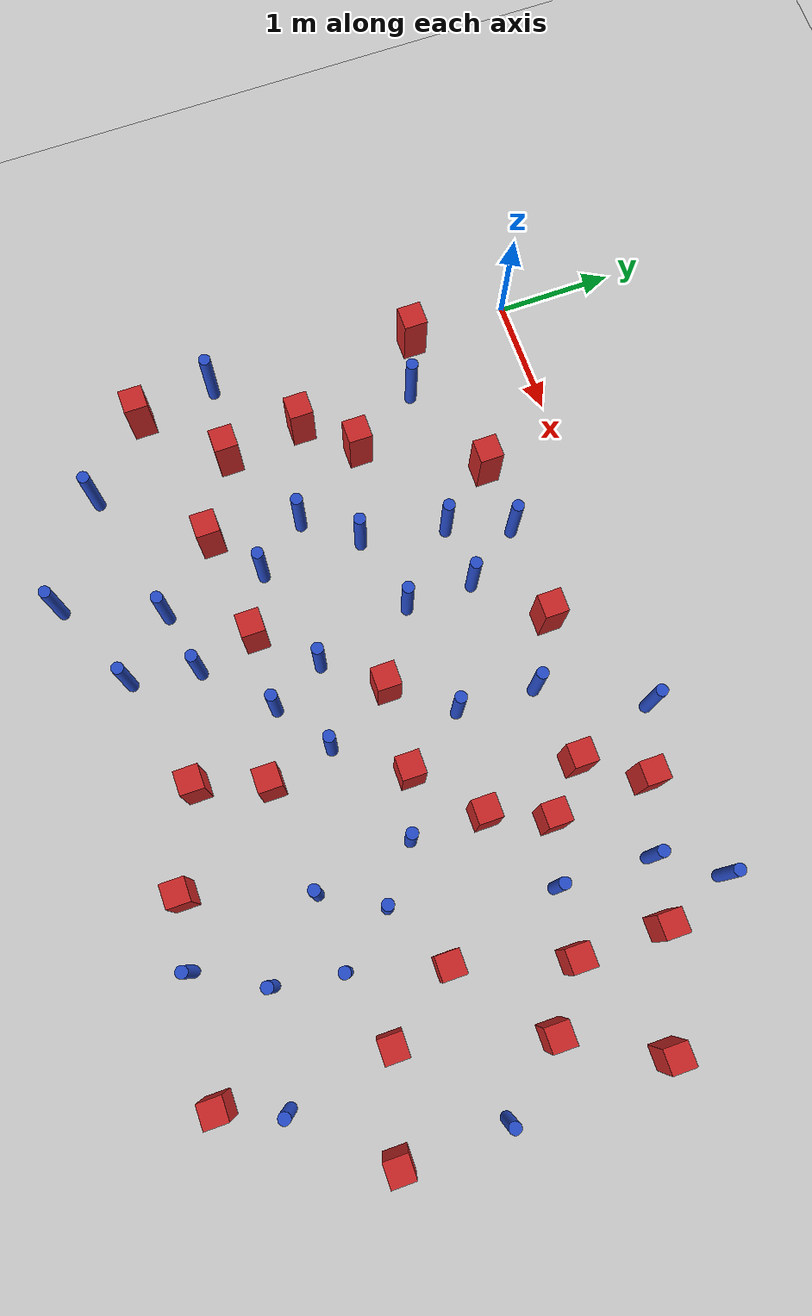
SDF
<sdf version="1.6">
 <world name="default">
  <model name="ground_plane">
   <static>1</static>
   <link name="link">
    <collision name="collision">
     <geometry><plane><normal>0 0 1</normal><size>100 100</size></plane></geometry>
     <surface><friction><ode><mu>100</mu><mu2>50</mu2></ode></friction></surface>
    </collision>
    <visual name="visual">
     <cast_shadows>0</cast_shadows>
     <geometry><plane><normal>0 0 1</normal><size>100 100</size></plane></geometry>
     <material>
      <ambient>1.0 1.0 1.0 1.0</ambient>
      <diffuse>0.8 0.8 0.8 1.0</diffuse>
      <specular>0.01 0.01 0.01 1.000000</specular>
     </material>
    </visual>
   </link>
  </model>
  <model name="square_post_obstacle5">
   <static>true</static>
   <pose>5.58213373667 -4.35693691751 8.22691968438e-08 7.2212513382e-06 -7.54495500217e-07 2.29674213826e-05</pose>
   <link name="link">
    <pose>0 0 0.25 0 -0 0</pose>
    <inertial>
     <mass>100</mass>
     <inertia>
      <ixx>0.166667</ixx>
      <ixy>0</ixy>
      <ixz>0</ixz>
      <iyy>0.166667</iyy>
      <iyz>0</iyz>
      <izz>0.166667</izz>
     </inertia>
    </inertial>
    <collision name="collision"><geometry><box><size>.2 .2 .5</size></box></geometry></collision>
    <visual name="visual">
     <geometry><box><size>.2 .2 .5</size></box></geometry>
     <material>
      <script><name>Gazebo/Red</name><uri>file://media/materials/scripts/gazebo.material</uri></script>
     </material>
    </visual>
   </link>
  </model>
  <model name="pole_obstacle13">
   <static>true</static>
   <pose>3.34858475064 -0.98336733475 2.88873142074e-08 -9.90536689217e-09 4.60219949004e-07 -1.20965994953e-07</pose>
   <link name="link">
    <pose>0 0 0.3 0 -0 0</pose>
    <inertial>
     <mass>1</mass>
     <inertia><ixx>0.145833</ixx><ixy>0</ixy><ixz>0</ixz><iyy>0.145833</iyy><iyz>0</iyz><izz>0.125</izz></inertia>
    </inertial>
    <collision name="collision">
     <geometry><cylinder><radius>0.05</radius><length>.6</length></cylinder></geometry>
    </collision>
    <visual name="visual">
     <geometry><cylinder><radius>0.05</radius><length>.6</length></cylinder></geometry>
     <material>
      <script><name>Gazebo/Blue</name><uri>file://media/materials/scripts/gazebo.material</uri></script>
     </material>
    </visual>
   </link>
  </model>
  <model name="square_post_obstacle22">
   <static>true</static>
   <pose>0.536728351592 -2.05278987813 8.22691968438e-08 7.2212513382e-06 -7.54495500217e-07 2.29674213826e-05</pose>
   <link name="link">
    <pose>0 0 0.25 0 -0 0</pose>
    <inertial>
     <mass>100</mass>
     <inertia>
      <ixx>0.166667</ixx>
      <ixy>0</ixy>
      <ixz>0</ixz>
      <iyy>0.166667</iyy>
      <iyz>0</iyz>
      <izz>0.166667</izz>
     </inertia>
    </inertial>
    <collision name="collision"><geometry><box><size>.2 .2 .5</size></box></geometry></collision>
    <visual name="visual">
     <geometry><box><size>.2 .2 .5</size></box></geometry>
     <material>
      <script><name>Gazebo/Red</name><uri>file://media/materials/scripts/gazebo.material</uri></script>
     </material>
    </visual>
   </link>
  </model>
  <model name="pole_obstacle17">
   <static>true</static>
   <pose>-0.0558707264338 -2.66336785733 2.88873142074e-08 -9.90536692535e-09 4.60219948925e-07 -1.2096599499e-07</pose>
   <link name="link">
    <pose>0 0 0.3 0 -0 0</pose>
    <inertial>
     <mass>1</mass>
     <inertia><ixx>0.145833</ixx><ixy>0</ixy><ixz>0</ixz><iyy>0.145833</iyy><iyz>0</iyz><izz>0.125</izz></inertia>
    </inertial>
    <collision name="collision">
     <geometry><cylinder><radius>0.05</radius><length>.6</length></cylinder></geometry>
    </collision>
    <visual name="visual">
     <geometry><cylinder><radius>0.05</radius><length>.6</length></cylinder></geometry>
     <material>
      <script><name>Gazebo/Blue</name><uri>file://media/materials/scripts/gazebo.material</uri></script>
     </material>
    </visual>
   </link>
  </model>
  <model name="pole_obstacle18">
   <static>true</static>
   <pose>5.77748012901 -3.87090259575 2.88873142074e-08 -9.90536690245e-09 4.6021994898e-07 -1.20965994966e-07</pose>
   <link name="link">
    <pose>0 0 0.3 0 -0 0</pose>
    <inertial>
     <mass>1</mass>
     <inertia><ixx>0.145833</ixx><ixy>0</ixy><ixz>0</ixz><iyy>0.145833</iyy><iyz>0</iyz><izz>0.125</izz></inertia>
    </inertial>
    <collision name="collision">
     <geometry><cylinder><radius>0.05</radius><length>.6</length></cylinder></geometry>
    </collision>
    <visual name="visual">
     <geometry><cylinder><radius>0.05</radius><length>.6</length></cylinder></geometry>
     <material>
      <script><name>Gazebo/Blue</name><uri>file://media/materials/scripts/gazebo.material</uri></script>
     </material>
    </visual>
   </link>
  </model>
  <model name="square_post_obstacle28">
   <static>true</static>
   <pose>2.18755131449 -2.99619584192 8.22691968438e-08 7.2212513382e-06 -7.54495500217e-07 2.29674213826e-05</pose>
   <link name="link">
    <pose>0 0 0.25 0 -0 0</pose>
    <inertial>
     <mass>100</mass>
     <inertia>
      <ixx>0.166667</ixx>
      <ixy>0</ixy>
      <ixz>0</ixz>
      <iyy>0.166667</iyy>
      <iyz>0</iyz>
      <izz>0.166667</izz>
     </inertia>
    </inertial>
    <collision name="collision"><geometry><box><size>.2 .2 .5</size></box></geometry></collision>
    <visual name="visual">
     <geometry><box><size>.2 .2 .5</size></box></geometry>
     <material>
      <script><name>Gazebo/Red</name><uri>file://media/materials/scripts/gazebo.material</uri></script>
     </material>
    </visual>
   </link>
  </model>
  <model name="square_post_obstacle41">
   <static>true</static>
   <pose>4.00640396796 -4.16289509332 8.22691968438e-08 7.2212513382e-06 -7.54495500217e-07 2.29674213826e-05</pose>
   <link name="link">
    <pose>0 0 0.25 0 -0 0</pose>
    <inertial>
     <mass>100</mass>
     <inertia>
      <ixx>0.166667</ixx>
      <ixy>0</ixy>
      <ixz>0</ixz>
      <iyy>0.166667</iyy>
      <iyz>0</iyz>
      <izz>0.166667</izz>
     </inertia>
    </inertial>
    <collision name="collision"><geometry><box><size>.2 .2 .5</size></box></geometry></collision>
    <visual name="visual">
     <geometry><box><size>.2 .2 .5</size></box></geometry>
     <material>
      <script><name>Gazebo/Red</name><uri>file://media/materials/scripts/gazebo.material</uri></script>
     </material>
    </visual>
   </link>
  </model>
  <model name="square_post_obstacle47">
   <static>true</static>
   <pose>3.22486725443 -3.81698603982 8.22691968438e-08 7.2212513382e-06 -7.54495500217e-07 2.29674213826e-05</pose>
   <link name="link">
    <pose>0 0 0.25 0 -0 0</pose>
    <inertial>
     <mass>100</mass>
     <inertia>
      <ixx>0.166667</ixx>
      <ixy>0</ixy>
      <ixz>0</ixz>
      <iyy>0.166667</iyy>
      <iyz>0</iyz>
      <izz>0.166667</izz>
     </inertia>
    </inertial>
    <collision name="collision"><geometry><box><size>.2 .2 .5</size></box></geometry></collision>
    <visual name="visual">
     <geometry><box><size>.2 .2 .5</size></box></geometry>
     <material>
      <script><name>Gazebo/Red</name><uri>file://media/materials/scripts/gazebo.material</uri></script>
     </material>
    </visual>
   </link>
  </model>
  <model name="pole_obstacle49">
   <static>true</static>
   <pose>1.36091345685 -2.3298193036 2.88873142074e-08 -9.90536689791e-09 4.6021994899e-07 -1.20965994959e-07</pose>
   <link name="link">
    <pose>0 0 0.3 0 -0 0</pose>
    <inertial>
     <mass>1</mass>
     <inertia><ixx>0.145833</ixx><ixy>0</ixy><ixz>0</ixz><iyy>0.145833</iyy><iyz>0</iyz><izz>0.125</izz></inertia>
    </inertial>
    <collision name="collision">
     <geometry><cylinder><radius>0.05</radius><length>.6</length></cylinder></geometry>
    </collision>
    <visual name="visual">
     <geometry><cylinder><radius>0.05</radius><length>.6</length></cylinder></geometry>
     <material>
      <script><name>Gazebo/Blue</name><uri>file://media/materials/scripts/gazebo.material</uri></script>
     </material>
    </visual>
   </link>
  </model>
  <model name="square_post_obstacle64">
   <static>true</static>
   <pose>0.898522155047 -1.66061465784 8.22691968438e-08 7.2212513382e-06 -7.54495500217e-07 2.29674213826e-05</pose>
   <link name="link">
    <pose>0 0 0.25 0 -0 0</pose>
    <inertial>
     <mass>100</mass>
     <inertia>
      <ixx>0.166667</ixx>
      <ixy>0</ixy>
      <ixz>0</ixz>
      <iyy>0.166667</iyy>
      <iyz>0</iyz>
      <izz>0.166667</izz>
     </inertia>
    </inertial>
    <collision name="collision"><geometry><box><size>.2 .2 .5</size></box></geometry></collision>
    <visual name="visual">
     <geometry><box><size>.2 .2 .5</size></box></geometry>
     <material>
      <script><name>Gazebo/Red</name><uri>file://media/materials/scripts/gazebo.material</uri></script>
     </material>
    </visual>
   </link>
  </model>
  <model name="pole_obstacle65">
   <static>true</static>
   <pose>0.618319979026 -3.89236733401 2.88873142074e-08 -9.90536689636e-09 4.60219948994e-07 -1.20965994958e-07</pose>
   <link name="link">
    <pose>0 0 0.3 0 -0 0</pose>
    <inertial>
     <mass>1</mass>
     <inertia><ixx>0.145833</ixx><ixy>0</ixy><ixz>0</ixz><iyy>0.145833</iyy><iyz>0</iyz><izz>0.125</izz></inertia>
    </inertial>
    <collision name="collision">
     <geometry><cylinder><radius>0.05</radius><length>.6</length></cylinder></geometry>
    </collision>
    <visual name="visual">
     <geometry><cylinder><radius>0.05</radius><length>.6</length></cylinder></geometry>
     <material>
      <script><name>Gazebo/Blue</name><uri>file://media/materials/scripts/gazebo.material</uri></script>
     </material>
    </visual>
   </link>
  </model>
  <model name="pole_obstacle71">
   <static>true</static>
   <pose>3.7781219068 -0.166580265086 2.88873142074e-08 -9.90536689156e-09 4.60219949005e-07 -1.20965994951e-07</pose>
   <link name="link">
    <pose>0 0 0.3 0 -0 0</pose>
    <inertial>
     <mass>1</mass>
     <inertia><ixx>0.145833</ixx><ixy>0</ixy><ixz>0</ixz><iyy>0.145833</iyy><iyz>0</iyz><izz>0.125</izz></inertia>
    </inertial>
    <collision name="collision">
     <geometry><cylinder><radius>0.05</radius><length>.6</length></cylinder></geometry>
    </collision>
    <visual name="visual">
     <geometry><cylinder><radius>0.05</radius><length>.6</length></cylinder></geometry>
     <material>
      <script><name>Gazebo/Blue</name><uri>file://media/materials/scripts/gazebo.material</uri></script>
     </material>
    </visual>
   </link>
  </model>
  <model name="pole_obstacle74">
   <static>true</static>
   <pose>2.33920346586 -1.15568974703 2.88873142074e-08 -9.90536689395e-09 4.60219949e-07 -1.20965994953e-07</pose>
   <link name="link">
    <pose>0 0 0.3 0 -0 0</pose>
    <inertial>
     <mass>1</mass>
     <inertia><ixx>0.145833</ixx><ixy>0</ixy><ixz>0</ixz><iyy>0.145833</iyy><iyz>0</iyz><izz>0.125</izz></inertia>
    </inertial>
    <collision name="collision">
     <geometry><cylinder><radius>0.05</radius><length>.6</length></cylinder></geometry>
    </collision>
    <visual name="visual">
     <geometry><cylinder><radius>0.05</radius><length>.6</length></cylinder></geometry>
     <material>
      <script><name>Gazebo/Blue</name><uri>file://media/materials/scripts/gazebo.material</uri></script>
     </material>
    </visual>
   </link>
  </model>
  <model name="pole_obstacle78">
   <static>true</static>
   <pose>5.23319291656 -0.143627655272 2.88873142074e-08 -9.90536689223e-09 4.60219949004e-07 -1.20965994952e-07</pose>
   <link name="link">
    <pose>0 0 0.3 0 -0 0</pose>
    <inertial>
     <mass>1</mass>
     <inertia><ixx>0.145833</ixx><ixy>0</ixy><ixz>0</ixz><iyy>0.145833</iyy><iyz>0</iyz><izz>0.125</izz></inertia>
    </inertial>
    <collision name="collision">
     <geometry><cylinder><radius>0.05</radius><length>.6</length></cylinder></geometry>
    </collision>
    <visual name="visual">
     <geometry><cylinder><radius>0.05</radius><length>.6</length></cylinder></geometry>
     <material>
      <script><name>Gazebo/Blue</name><uri>file://media/materials/scripts/gazebo.material</uri></script>
     </material>
    </visual>
   </link>
  </model>
  <model name="square_post_obstacle79">
   <static>true</static>
   <pose>4.32806775505 -0.422884418551 8.22691968438e-08 7.2212513382e-06 -7.54495500217e-07 2.29674213826e-05</pose>
   <link name="link">
    <pose>0 0 0.25 0 -0 0</pose>
    <inertial>
     <mass>100</mass>
     <inertia>
      <ixx>0.166667</ixx>
      <ixy>0</ixy>
      <ixz>0</ixz>
      <iyy>0.166667</iyy>
      <iyz>0</iyz>
      <izz>0.166667</izz>
     </inertia>
    </inertial>
    <collision name="collision"><geometry><box><size>.2 .2 .5</size></box></geometry></collision>
    <visual name="visual">
     <geometry><box><size>.2 .2 .5</size></box></geometry>
     <material>
      <script><name>Gazebo/Red</name><uri>file://media/materials/scripts/gazebo.material</uri></script>
     </material>
    </visual>
   </link>
  </model>
  <model name="pole_obstacle97">
   <static>true</static>
   <pose>1.45192159625 -4.43916252776 2.88873142074e-08 -9.90536689852e-09 4.60219948989e-07 -1.2096599496e-07</pose>
   <link name="link">
    <pose>0 0 0.3 0 -0 0</pose>
    <inertial>
     <mass>1</mass>
     <inertia><ixx>0.145833</ixx><ixy>0</ixy><ixz>0</ixz><iyy>0.145833</iyy><iyz>0</iyz><izz>0.125</izz></inertia>
    </inertial>
    <collision name="collision">
     <geometry><cylinder><radius>0.05</radius><length>.6</length></cylinder></geometry>
    </collision>
    <visual name="visual">
     <geometry><cylinder><radius>0.05</radius><length>.6</length></cylinder></geometry>
     <material>
      <script><name>Gazebo/Blue</name><uri>file://media/materials/scripts/gazebo.material</uri></script>
     </material>
    </visual>
   </link>
  </model>
  <model name="pole_obstacle99">
   <static>true</static>
   <pose>1.80909178135 -1.19204967231 2.88873142074e-08 -9.90536689672e-09 4.60219948993e-07 -1.20965994959e-07</pose>
   <link name="link">
    <pose>0 0 0.3 0 -0 0</pose>
    <inertial>
     <mass>1</mass>
     <inertia><ixx>0.145833</ixx><ixy>0</ixy><ixz>0</ixz><iyy>0.145833</iyy><iyz>0</iyz><izz>0.125</izz></inertia>
    </inertial>
    <collision name="collision">
     <geometry><cylinder><radius>0.05</radius><length>.6</length></cylinder></geometry>
    </collision>
    <visual name="visual">
     <geometry><cylinder><radius>0.05</radius><length>.6</length></cylinder></geometry>
     <material>
      <script><name>Gazebo/Blue</name><uri>file://media/materials/scripts/gazebo.material</uri></script>
     </material>
    </visual>
   </link>
  </model>
  <model name="pole_obstacle100">
   <static>true</static>
   <pose>1.99716783515 -0.671688568658 2.88873142074e-08 -9.9053669082e-09 4.60219948966e-07 -1.20965994976e-07</pose>
   <link name="link">
    <pose>0 0 0.3 0 -0 0</pose>
    <inertial>
     <mass>1</mass>
     <inertia><ixx>0.145833</ixx><ixy>0</ixy><ixz>0</ixz><iyy>0.145833</iyy><iyz>0</iyz><izz>0.125</izz></inertia>
    </inertial>
    <collision name="collision">
     <geometry><cylinder><radius>0.05</radius><length>.6</length></cylinder></geometry>
    </collision>
    <visual name="visual">
     <geometry><cylinder><radius>0.05</radius><length>.6</length></cylinder></geometry>
     <material>
      <script><name>Gazebo/Blue</name><uri>file://media/materials/scripts/gazebo.material</uri></script>
     </material>
    </visual>
   </link>
  </model>
  <model name="square_post_obstacle94">
   <static>true</static>
   <pose>0.612486489703 -2.72702127874 8.22691968438e-08 7.2212513382e-06 -7.54495500217e-07 2.29674213826e-05</pose>
   <link name="link">
    <pose>0 0 0.25 0 -0 0</pose>
    <inertial>
     <mass>100</mass>
     <inertia>
      <ixx>0.166667</ixx>
      <ixy>0</ixy>
      <ixz>0</ixz>
      <iyy>0.166667</iyy>
      <iyz>0</iyz>
      <izz>0.166667</izz>
     </inertia>
    </inertial>
    <collision name="collision"><geometry><box><size>.2 .2 .5</size></box></geometry></collision>
    <visual name="visual">
     <geometry><box><size>.2 .2 .5</size></box></geometry>
     <material>
      <script><name>Gazebo/Red</name><uri>file://media/materials/scripts/gazebo.material</uri></script>
     </material>
    </visual>
   </link>
  </model>
  <model name="pole_obstacle107">
   <static>true</static>
   <pose>4.18005461206 -2.34685959148 2.88873142074e-08 -9.90536690245e-09 4.6021994898e-07 -1.20965994966e-07</pose>
   <link name="link">
    <pose>0 0 0.3 0 -0 0</pose>
    <inertial>
     <mass>1</mass>
     <inertia><ixx>0.145833</ixx><ixy>0</ixy><ixz>0</ixz><iyy>0.145833</iyy><iyz>0</iyz><izz>0.125</izz></inertia>
    </inertial>
    <collision name="collision">
     <geometry><cylinder><radius>0.05</radius><length>.6</length></cylinder></geometry>
    </collision>
    <visual name="visual">
     <geometry><cylinder><radius>0.05</radius><length>.6</length></cylinder></geometry>
     <material>
      <script><name>Gazebo/Blue</name><uri>file://media/materials/scripts/gazebo.material</uri></script>
     </material>
    </visual>
   </link>
  </model>
  <model name="square_post_obstacle98">
   <static>true</static>
   <pose>1.27426273541 -3.08795597381 8.22691968438e-08 7.2212513382e-06 -7.54495500217e-07 2.29674213826e-05</pose>
   <link name="link">
    <pose>0 0 0.25 0 -0 0</pose>
    <inertial>
     <mass>100</mass>
     <inertia>
      <ixx>0.166667</ixx>
      <ixy>0</ixy>
      <ixz>0</ixz>
      <iyy>0.166667</iyy>
      <iyz>0</iyz>
      <izz>0.166667</izz>
     </inertia>
    </inertial>
    <collision name="collision"><geometry><box><size>.2 .2 .5</size></box></geometry></collision>
    <visual name="visual">
     <geometry><box><size>.2 .2 .5</size></box></geometry>
     <material>
      <script><name>Gazebo/Red</name><uri>file://media/materials/scripts/gazebo.material</uri></script>
     </material>
    </visual>
   </link>
  </model>
  <model name="pole_obstacle114">
   <static>true</static>
   <pose>4.33791004147 -3.17164808258 2.88873142074e-08 -9.90536690245e-09 4.6021994898e-07 -1.20965994966e-07</pose>
   <link name="link">
    <pose>0 0 0.3 0 -0 0</pose>
    <inertial>
     <mass>1</mass>
     <inertia><ixx>0.145833</ixx><ixy>0</ixy><ixz>0</ixz><iyy>0.145833</iyy><iyz>0</iyz><izz>0.125</izz></inertia>
    </inertial>
    <collision name="collision">
     <geometry><cylinder><radius>0.05</radius><length>.6</length></cylinder></geometry>
    </collision>
    <visual name="visual">
     <geometry><cylinder><radius>0.05</radius><length>.6</length></cylinder></geometry>
     <material>
      <script><name>Gazebo/Blue</name><uri>file://media/materials/scripts/gazebo.material</uri></script>
     </material>
    </visual>
   </link>
  </model>
  <model name="square_post_obstacle107">
   <static>true</static>
   <pose>5.43947340817 -0.730253624824 8.22691968438e-08 7.2212513382e-06 -7.54495500217e-07 2.29674213826e-05</pose>
   <link name="link">
    <pose>0 0 0.25 0 -0 0</pose>
    <inertial>
     <mass>100</mass>
     <inertia>
      <ixx>0.166667</ixx>
      <ixy>0</ixy>
      <ixz>0</ixz>
      <iyy>0.166667</iyy>
      <iyz>0</iyz>
      <izz>0.166667</izz>
     </inertia>
    </inertial>
    <collision name="collision"><geometry><box><size>.2 .2 .5</size></box></geometry></collision>
    <visual name="visual">
     <geometry><box><size>.2 .2 .5</size></box></geometry>
     <material>
      <script><name>Gazebo/Red</name><uri>file://media/materials/scripts/gazebo.material</uri></script>
     </material>
    </visual>
   </link>
  </model>
  <model name="square_post_obstacle108">
   <static>true</static>
   <pose>0.0331823796185 -3.32757799314 8.22691968438e-08 7.2212513382e-06 -7.54495500217e-07 2.29674213826e-05</pose>
   <link name="link">
    <pose>0 0 0.25 0 -0 0</pose>
    <inertial>
     <mass>100</mass>
     <inertia>
      <ixx>0.166667</ixx>
      <ixy>0</ixy>
      <ixz>0</ixz>
      <iyy>0.166667</iyy>
      <iyz>0</iyz>
      <izz>0.166667</izz>
     </inertia>
    </inertial>
    <collision name="collision"><geometry><box><size>.2 .2 .5</size></box></geometry></collision>
    <visual name="visual">
     <geometry><box><size>.2 .2 .5</size></box></geometry>
     <material>
      <script><name>Gazebo/Red</name><uri>file://media/materials/scripts/gazebo.material</uri></script>
     </material>
    </visual>
   </link>
  </model>
  <model name="square_post_obstacle110">
   <static>true</static>
   <pose>6.33395806071 -1.05585323986 8.22691968438e-08 7.2212513382e-06 -7.54495500217e-07 2.29674213826e-05</pose>
   <link name="link">
    <pose>0 0 0.25 0 -0 0</pose>
    <inertial>
     <mass>100</mass>
     <inertia>
      <ixx>0.166667</ixx>
      <ixy>0</ixy>
      <ixz>0</ixz>
      <iyy>0.166667</iyy>
      <iyz>0</iyz>
      <izz>0.166667</izz>
     </inertia>
    </inertial>
    <collision name="collision"><geometry><box><size>.2 .2 .5</size></box></geometry></collision>
    <visual name="visual">
     <geometry><box><size>.2 .2 .5</size></box></geometry>
     <material>
      <script><name>Gazebo/Red</name><uri>file://media/materials/scripts/gazebo.material</uri></script>
     </material>
    </visual>
   </link>
  </model>
  <model name="pole_obstacle128">
   <static>true</static>
   <pose>2.58996879089 -2.56338594891 2.88873142074e-08 -9.90536690232e-09 4.6021994898e-07 -1.20965994968e-07</pose>
   <link name="link">
    <pose>0 0 0.3 0 -0 0</pose>
    <inertial>
     <mass>1</mass>
     <inertia><ixx>0.145833</ixx><ixy>0</ixy><ixz>0</ixz><iyy>0.145833</iyy><iyz>0</iyz><izz>0.125</izz></inertia>
    </inertial>
    <collision name="collision">
     <geometry><cylinder><radius>0.05</radius><length>.6</length></cylinder></geometry>
    </collision>
    <visual name="visual">
     <geometry><cylinder><radius>0.05</radius><length>.6</length></cylinder></geometry>
     <material>
      <script><name>Gazebo/Blue</name><uri>file://media/materials/scripts/gazebo.material</uri></script>
     </material>
    </visual>
   </link>
  </model>
  <model name="square_post_obstacle114">
   <static>true</static>
   <pose>3.40581087794 -3.24769245447 8.22691968438e-08 7.2212513382e-06 -7.54495500217e-07 2.29674213826e-05</pose>
   <link name="link">
    <pose>0 0 0.25 0 -0 0</pose>
    <inertial>
     <mass>100</mass>
     <inertia>
      <ixx>0.166667</ixx>
      <ixy>0</ixy>
      <ixz>0</ixz>
      <iyy>0.166667</iyy>
      <iyz>0</iyz>
      <izz>0.166667</izz>
     </inertia>
    </inertial>
    <collision name="collision"><geometry><box><size>.2 .2 .5</size></box></geometry></collision>
    <visual name="visual">
     <geometry><box><size>.2 .2 .5</size></box></geometry>
     <material>
      <script><name>Gazebo/Red</name><uri>file://media/materials/scripts/gazebo.material</uri></script>
     </material>
    </visual>
   </link>
  </model>
  <model name="pole_obstacle130">
   <static>true</static>
   <pose>2.32533840753 -3.50514452851 2.88873142074e-08 -9.90536690232e-09 4.6021994898e-07 -1.20965994968e-07</pose>
   <link name="link">
    <pose>0 0 0.3 0 -0 0</pose>
    <inertial>
     <mass>1</mass>
     <inertia><ixx>0.145833</ixx><ixy>0</ixy><ixz>0</ixz><iyy>0.145833</iyy><iyz>0</iyz><izz>0.125</izz></inertia>
    </inertial>
    <collision name="collision">
     <geometry><cylinder><radius>0.05</radius><length>.6</length></cylinder></geometry>
    </collision>
    <visual name="visual">
     <geometry><cylinder><radius>0.05</radius><length>.6</length></cylinder></geometry>
     <material>
      <script><name>Gazebo/Blue</name><uri>file://media/materials/scripts/gazebo.material</uri></script>
     </material>
    </visual>
   </link>
  </model>
  <model name="pole_obstacle133">
   <static>true</static>
   <pose>1.78246439067 -3.62213198996 2.88873142074e-08 -9.90536689791e-09 4.6021994899e-07 -1.20965994959e-07</pose>
   <link name="link">
    <pose>0 0 0.3 0 -0 0</pose>
    <inertial>
     <mass>1</mass>
     <inertia><ixx>0.145833</ixx><ixy>0</ixy><ixz>0</ixz><iyy>0.145833</iyy><iyz>0</iyz><izz>0.125</izz></inertia>
    </inertial>
    <collision name="collision">
     <geometry><cylinder><radius>0.05</radius><length>.6</length></cylinder></geometry>
    </collision>
    <visual name="visual">
     <geometry><cylinder><radius>0.05</radius><length>.6</length></cylinder></geometry>
     <material>
      <script><name>Gazebo/Blue</name><uri>file://media/materials/scripts/gazebo.material</uri></script>
     </material>
    </visual>
   </link>
  </model>
  <model name="pole_obstacle134">
   <static>true</static>
   <pose>0.545768224701 -1.05775818409 2.88873142074e-08 -9.90536690151e-09 4.60219948982e-07 -1.20965994965e-07</pose>
   <link name="link">
    <pose>0 0 0.3 0 -0 0</pose>
    <inertial>
     <mass>1</mass>
     <inertia><ixx>0.145833</ixx><ixy>0</ixy><ixz>0</ixz><iyy>0.145833</iyy><iyz>0</iyz><izz>0.125</izz></inertia>
    </inertial>
    <collision name="collision">
     <geometry><cylinder><radius>0.05</radius><length>.6</length></cylinder></geometry>
    </collision>
    <visual name="visual">
     <geometry><cylinder><radius>0.05</radius><length>.6</length></cylinder></geometry>
     <material>
      <script><name>Gazebo/Blue</name><uri>file://media/materials/scripts/gazebo.material</uri></script>
     </material>
    </visual>
   </link>
  </model>
  <model name="square_post_obstacle117">
   <static>true</static>
   <pose>3.67541048281 -2.17709908329 8.22691968438e-08 7.2212513382e-06 -7.54495500217e-07 2.29674213826e-05</pose>
   <link name="link">
    <pose>0 0 0.25 0 -0 0</pose>
    <inertial>
     <mass>100</mass>
     <inertia>
      <ixx>0.166667</ixx>
      <ixy>0</ixy>
      <ixz>0</ixz>
      <iyy>0.166667</iyy>
      <iyz>0</iyz>
      <izz>0.166667</izz>
     </inertia>
    </inertial>
    <collision name="collision"><geometry><box><size>.2 .2 .5</size></box></geometry></collision>
    <visual name="visual">
     <geometry><box><size>.2 .2 .5</size></box></geometry>
     <material>
      <script><name>Gazebo/Red</name><uri>file://media/materials/scripts/gazebo.material</uri></script>
     </material>
    </visual>
   </link>
  </model>
  <model name="square_post_obstacle120">
   <static>true</static>
   <pose>5.44401736198 -1.46878365963 8.22691968438e-08 7.2212513382e-06 -7.54495500217e-07 2.29674213826e-05</pose>
   <link name="link">
    <pose>0 0 0.25 0 -0 0</pose>
    <inertial>
     <mass>100</mass>
     <inertia>
      <ixx>0.166667</ixx>
      <ixy>0</ixy>
      <ixz>0</ixz>
      <iyy>0.166667</iyy>
      <iyz>0</iyz>
      <izz>0.166667</izz>
     </inertia>
    </inertial>
    <collision name="collision"><geometry><box><size>.2 .2 .5</size></box></geometry></collision>
    <visual name="visual">
     <geometry><box><size>.2 .2 .5</size></box></geometry>
     <material>
      <script><name>Gazebo/Red</name><uri>file://media/materials/scripts/gazebo.material</uri></script>
     </material>
    </visual>
   </link>
  </model>
  <model name="square_post_obstacle122">
   <static>true</static>
   <pose>5.17714442704 -2.39494758645 8.22691968438e-08 7.2212513382e-06 -7.54495500217e-07 2.29674213826e-05</pose>
   <link name="link">
    <pose>0 0 0.25 0 -0 0</pose>
    <inertial>
     <mass>100</mass>
     <inertia>
      <ixx>0.166667</ixx>
      <ixy>0</ixy>
      <ixz>0</ixz>
      <iyy>0.166667</iyy>
      <iyz>0</iyz>
      <izz>0.166667</izz>
     </inertia>
    </inertial>
    <collision name="collision"><geometry><box><size>.2 .2 .5</size></box></geometry></collision>
    <visual name="visual">
     <geometry><box><size>.2 .2 .5</size></box></geometry>
     <material>
      <script><name>Gazebo/Red</name><uri>file://media/materials/scripts/gazebo.material</uri></script>
     </material>
    </visual>
   </link>
  </model>
  <model name="pole_obstacle140">
   <static>true</static>
   <pose>4.88495058194 -3.7119805526 2.88873142074e-08 -9.90536690245e-09 4.6021994898e-07 -1.20965994966e-07</pose>
   <link name="link">
    <pose>0 0 0.3 0 -0 0</pose>
    <inertial>
     <mass>1</mass>
     <inertia><ixx>0.145833</ixx><ixy>0</ixy><ixz>0</ixz><iyy>0.145833</iyy><iyz>0</iyz><izz>0.125</izz></inertia>
    </inertial>
    <collision name="collision">
     <geometry><cylinder><radius>0.05</radius><length>.6</length></cylinder></geometry>
    </collision>
    <visual name="visual">
     <geometry><cylinder><radius>0.05</radius><length>.6</length></cylinder></geometry>
     <material>
      <script><name>Gazebo/Blue</name><uri>file://media/materials/scripts/gazebo.material</uri></script>
     </material>
    </visual>
   </link>
  </model>
  <model name="pole_obstacle143">
   <static>true</static>
   <pose>2.35372381542 -1.73083985646 2.88873142074e-08 -9.90536689395e-09 4.60219949e-07 -1.20965994953e-07</pose>
   <link name="link">
    <pose>0 0 0.3 0 -0 0</pose>
    <inertial>
     <mass>1</mass>
     <inertia><ixx>0.145833</ixx><ixy>0</ixy><ixz>0</ixz><iyy>0.145833</iyy><iyz>0</iyz><izz>0.125</izz></inertia>
    </inertial>
    <collision name="collision">
     <geometry><cylinder><radius>0.05</radius><length>.6</length></cylinder></geometry>
    </collision>
    <visual name="visual">
     <geometry><cylinder><radius>0.05</radius><length>.6</length></cylinder></geometry>
     <material>
      <script><name>Gazebo/Blue</name><uri>file://media/materials/scripts/gazebo.material</uri></script>
     </material>
    </visual>
   </link>
  </model>
  <model name="square_post_obstacle141">
   <static>true</static>
   <pose>2.82411820756 -0.677958998327 8.22691968438e-08 7.2212513382e-06 -7.54495500217e-07 2.29674213826e-05</pose>
   <link name="link">
    <pose>0 0 0.25 0 -0 0</pose>
    <inertial>
     <mass>100</mass>
     <inertia>
      <ixx>0.166667</ixx>
      <ixy>0</ixy>
      <ixz>0</ixz>
      <iyy>0.166667</iyy>
      <iyz>0</iyz>
      <izz>0.166667</izz>
     </inertia>
    </inertial>
    <collision name="collision"><geometry><box><size>.2 .2 .5</size></box></geometry></collision>
    <visual name="visual">
     <geometry><box><size>.2 .2 .5</size></box></geometry>
     <material>
      <script><name>Gazebo/Red</name><uri>file://media/materials/scripts/gazebo.material</uri></script>
     </material>
    </visual>
   </link>
  </model>
  <model name="square_post_obstacle153">
   <static>true</static>
   <pose>4.1816434171 -1.73956788587 8.22691968438e-08 7.2212513382e-06 -7.54495500217e-07 2.29674213826e-05</pose>
   <link name="link">
    <pose>0 0 0.25 0 -0 0</pose>
    <inertial>
     <mass>100</mass>
     <inertia>
      <ixx>0.166667</ixx>
      <ixy>0</ixy>
      <ixz>0</ixz>
      <iyy>0.166667</iyy>
      <iyz>0</iyz>
      <izz>0.166667</izz>
     </inertia>
    </inertial>
    <collision name="collision"><geometry><box><size>.2 .2 .5</size></box></geometry></collision>
    <visual name="visual">
     <geometry><box><size>.2 .2 .5</size></box></geometry>
     <material>
      <script><name>Gazebo/Red</name><uri>file://media/materials/scripts/gazebo.material</uri></script>
     </material>
    </visual>
   </link>
  </model>
  <model name="pole_obstacle171">
   <static>true</static>
   <pose>4.61554692847 -2.69107182252 2.88873142074e-08 -9.90536690245e-09 4.6021994898e-07 -1.20965994966e-07</pose>
   <link name="link">
    <pose>0 0 0.3 0 -0 0</pose>
    <inertial>
     <mass>1</mass>
     <inertia><ixx>0.145833</ixx><ixy>0</ixy><ixz>0</ixz><iyy>0.145833</iyy><iyz>0</iyz><izz>0.125</izz></inertia>
    </inertial>
    <collision name="collision">
     <geometry><cylinder><radius>0.05</radius><length>.6</length></cylinder></geometry>
    </collision>
    <visual name="visual">
     <geometry><cylinder><radius>0.05</radius><length>.6</length></cylinder></geometry>
     <material>
      <script><name>Gazebo/Blue</name><uri>file://media/materials/scripts/gazebo.material</uri></script>
     </material>
    </visual>
   </link>
  </model>
  <model name="pole_obstacle175">
   <static>true</static>
   <pose>2.23247153802 -4.07207145894 2.88873142074e-08 -9.90536689859e-09 4.60219948989e-07 -1.20965994961e-07</pose>
   <link name="link">
    <pose>0 0 0.3 0 -0 0</pose>
    <inertial>
     <mass>1</mass>
     <inertia><ixx>0.145833</ixx><ixy>0</ixy><ixz>0</ixz><iyy>0.145833</iyy><iyz>0</iyz><izz>0.125</izz></inertia>
    </inertial>
    <collision name="collision">
     <geometry><cylinder><radius>0.05</radius><length>.6</length></cylinder></geometry>
    </collision>
    <visual name="visual">
     <geometry><cylinder><radius>0.05</radius><length>.6</length></cylinder></geometry>
     <material>
      <script><name>Gazebo/Blue</name><uri>file://media/materials/scripts/gazebo.material</uri></script>
     </material>
    </visual>
   </link>
  </model>
  <model name="square_post_obstacle166">
   <static>true</static>
   <pose>5.59180815495 -2.98850904868 8.22691968438e-08 7.2212513382e-06 -7.54495500217e-07 2.29674213826e-05</pose>
   <link name="link">
    <pose>0 0 0.25 0 -0 0</pose>
    <inertial>
     <mass>100</mass>
     <inertia>
      <ixx>0.166667</ixx>
      <ixy>0</ixy>
      <ixz>0</ixz>
      <iyy>0.166667</iyy>
      <iyz>0</iyz>
      <izz>0.166667</izz>
     </inertia>
    </inertial>
    <collision name="collision"><geometry><box><size>.2 .2 .5</size></box></geometry></collision>
    <visual name="visual">
     <geometry><box><size>.2 .2 .5</size></box></geometry>
     <material>
      <script><name>Gazebo/Red</name><uri>file://media/materials/scripts/gazebo.material</uri></script>
     </material>
    </visual>
   </link>
  </model>
  <model name="pole_obstacle183">
   <static>true</static>
   <pose>2.82491083777 -3.01805702306 2.88873142074e-08 -9.90536690232e-09 4.6021994898e-07 -1.20965994968e-07</pose>
   <link name="link">
    <pose>0 0 0.3 0 -0 0</pose>
    <inertial>
     <mass>1</mass>
     <inertia><ixx>0.145833</ixx><ixy>0</ixy><ixz>0</ixz><iyy>0.145833</iyy><iyz>0</iyz><izz>0.125</izz></inertia>
    </inertial>
    <collision name="collision">
     <geometry><cylinder><radius>0.05</radius><length>.6</length></cylinder></geometry>
    </collision>
    <visual name="visual">
     <geometry><cylinder><radius>0.05</radius><length>.6</length></cylinder></geometry>
     <material>
      <script><name>Gazebo/Blue</name><uri>file://media/materials/scripts/gazebo.material</uri></script>
     </material>
    </visual>
   </link>
  </model>
  <model name="square_post_obstacle181">
   <static>true</static>
   <pose>5.91458582996 -1.81475755101 8.22691968438e-08 7.2212513382e-06 -7.54495500217e-07 2.29674213826e-05</pose>
   <link name="link">
    <pose>0 0 0.25 0 -0 0</pose>
    <inertial>
     <mass>100</mass>
     <inertia>
      <ixx>0.166667</ixx>
      <ixy>0</ixy>
      <ixz>0</ixz>
      <iyy>0.166667</iyy>
      <iyz>0</iyz>
      <izz>0.166667</izz>
     </inertia>
    </inertial>
    <collision name="collision"><geometry><box><size>.2 .2 .5</size></box></geometry></collision>
    <visual name="visual">
     <geometry><box><size>.2 .2 .5</size></box></geometry>
     <material>
      <script><name>Gazebo/Red</name><uri>file://media/materials/scripts/gazebo.material</uri></script>
     </material>
    </visual>
   </link>
  </model>
  <model name="square_post_obstacle195">
   <static>true</static>
   <pose>6.38932699894 -3.22267565787 8.22691968438e-08 7.2212513382e-06 -7.54495500217e-07 2.29674213826e-05</pose>
   <link name="link">
    <pose>0 0 0.25 0 -0 0</pose>
    <inertial>
     <mass>100</mass>
     <inertia>
      <ixx>0.166667</ixx>
      <ixy>0</ixy>
      <ixz>0</ixz>
      <iyy>0.166667</iyy>
      <iyz>0</iyz>
      <izz>0.166667</izz>
     </inertia>
    </inertial>
    <collision name="collision"><geometry><box><size>.2 .2 .5</size></box></geometry></collision>
    <visual name="visual">
     <geometry><box><size>.2 .2 .5</size></box></geometry>
     <material>
      <script><name>Gazebo/Red</name><uri>file://media/materials/scripts/gazebo.material</uri></script>
     </material>
    </visual>
   </link>
  </model>
  <model name="square_post_obstacle200">
   <static>true</static>
   <pose>1.41461740202 -0.701138649064 8.22691968438e-08 7.2212513382e-06 -7.54495500217e-07 2.29674213826e-05</pose>
   <link name="link">
    <pose>0 0 0.25 0 -0 0</pose>
    <inertial>
     <mass>100</mass>
     <inertia>
      <ixx>0.166667</ixx>
      <ixy>0</ixy>
      <ixz>0</ixz>
      <iyy>0.166667</iyy>
      <iyz>0</iyz>
      <izz>0.166667</izz>
     </inertia>
    </inertial>
    <collision name="collision"><geometry><box><size>.2 .2 .5</size></box></geometry></collision>
    <visual name="visual">
     <geometry><box><size>.2 .2 .5</size></box></geometry>
     <material>
      <script><name>Gazebo/Red</name><uri>file://media/materials/scripts/gazebo.material</uri></script>
     </material>
    </visual>
   </link>
  </model>
  <model name="square_post_obstacle201">
   <static>true</static>
   <pose>4.38220205602 -1.25004950861 8.22691968438e-08 7.2212513382e-06 -7.54495500217e-07 2.29674213826e-05</pose>
   <link name="link">
    <pose>0 0 0.25 0 -0 0</pose>
    <inertial>
     <mass>100</mass>
     <inertia>
      <ixx>0.166667</ixx>
      <ixy>0</ixy>
      <ixz>0</ixz>
      <iyy>0.166667</iyy>
      <iyz>0</iyz>
      <izz>0.166667</izz>
     </inertia>
    </inertial>
    <collision name="collision"><geometry><box><size>.2 .2 .5</size></box></geometry></collision>
    <visual name="visual">
     <geometry><box><size>.2 .2 .5</size></box></geometry>
     <material>
      <script><name>Gazebo/Red</name><uri>file://media/materials/scripts/gazebo.material</uri></script>
     </material>
    </visual>
   </link>
  </model>
  <model name="square_post_obstacle208">
   <static>true</static>
   <pose>0.0699330656943 -0.884038989802 8.22691968438e-08 7.2212513382e-06 -7.54495500217e-07 2.29674213826e-05</pose>
   <link name="link">
    <pose>0 0 0.25 0 -0 0</pose>
    <inertial>
     <mass>100</mass>
     <inertia>
      <ixx>0.166667</ixx>
      <ixy>0</ixy>
      <ixz>0</ixz>
      <iyy>0.166667</iyy>
      <iyz>0</iyz>
      <izz>0.166667</izz>
     </inertia>
    </inertial>
    <collision name="collision"><geometry><box><size>.2 .2 .5</size></box></geometry></collision>
    <visual name="visual">
     <geometry><box><size>.2 .2 .5</size></box></geometry>
     <material>
      <script><name>Gazebo/Red</name><uri>file://media/materials/scripts/gazebo.material</uri></script>
     </material>
    </visual>
   </link>
  </model>
  <model name="square_post_obstacle210">
   <static>true</static>
   <pose>4.01777255491 -0.896825712371 8.22691968438e-08 7.2212513382e-06 -7.54495500217e-07 2.29674213826e-05</pose>
   <link name="link">
    <pose>0 0 0.25 0 -0 0</pose>
    <inertial>
     <mass>100</mass>
     <inertia>
      <ixx>0.166667</ixx>
      <ixy>0</ixy>
      <ixz>0</ixz>
      <iyy>0.166667</iyy>
      <iyz>0</iyz>
      <izz>0.166667</izz>
     </inertia>
    </inertial>
    <collision name="collision"><geometry><box><size>.2 .2 .5</size></box></geometry></collision>
    <visual name="visual">
     <geometry><box><size>.2 .2 .5</size></box></geometry>
     <material>
      <script><name>Gazebo/Red</name><uri>file://media/materials/scripts/gazebo.material</uri></script>
     </material>
    </visual>
   </link>
  </model>
  <model name="square_post_obstacle212">
   <static>true</static>
   <pose>2.94984910373 -2.12477971828 8.22691968438e-08 7.2212513382e-06 -7.54495500217e-07 2.29674213826e-05</pose>
   <link name="link">
    <pose>0 0 0.25 0 -0 0</pose>
    <inertial>
     <mass>100</mass>
     <inertia>
      <ixx>0.166667</ixx>
      <ixy>0</ixy>
      <ixz>0</ixz>
      <iyy>0.166667</iyy>
      <iyz>0</iyz>
      <izz>0.166667</izz>
     </inertia>
    </inertial>
    <collision name="collision"><geometry><box><size>.2 .2 .5</size></box></geometry></collision>
    <visual name="visual">
     <geometry><box><size>.2 .2 .5</size></box></geometry>
     <material>
      <script><name>Gazebo/Red</name><uri>file://media/materials/scripts/gazebo.material</uri></script>
     </material>
    </visual>
   </link>
  </model>
  <model name="pole_obstacle203">
   <static>true</static>
   <pose>4.97131000913 -3.14817997959 2.88873142074e-08 -9.90536690245e-09 4.6021994898e-07 -1.20965994966e-07</pose>
   <link name="link">
    <pose>0 0 0.3 0 -0 0</pose>
    <inertial>
     <mass>1</mass>
     <inertia><ixx>0.145833</ixx><ixy>0</ixy><ixz>0</ixz><iyy>0.145833</iyy><iyz>0</iyz><izz>0.125</izz></inertia>
    </inertial>
    <collision name="collision">
     <geometry><cylinder><radius>0.05</radius><length>.6</length></cylinder></geometry>
    </collision>
    <visual name="visual">
     <geometry><cylinder><radius>0.05</radius><length>.6</length></cylinder></geometry>
     <material>
      <script><name>Gazebo/Blue</name><uri>file://media/materials/scripts/gazebo.material</uri></script>
     </material>
    </visual>
   </link>
  </model>
  <model name="pole_obstacle206">
   <static>true</static>
   <pose>1.69190000913 -2.76446997959 2.88873142074e-08 -9.90536689791e-09 4.6021994899e-07 -1.20965994959e-07</pose>
   <link name="link">
    <pose>0 0 0.3 0 -0 0</pose>
    <inertial>
     <mass>1</mass>
     <inertia><ixx>0.145833</ixx><ixy>0</ixy><ixz>0</ixz><iyy>0.145833</iyy><iyz>0</iyz><izz>0.125</izz></inertia>
    </inertial>
    <collision name="collision">
     <geometry><cylinder><radius>0.05</radius><length>.6</length></cylinder></geometry>
    </collision>
    <visual name="visual">
     <geometry><cylinder><radius>0.05</radius><length>.6</length></cylinder></geometry>
     <material>
      <script><name>Gazebo/Blue</name><uri>file://media/materials/scripts/gazebo.material</uri></script>
     </material>
    </visual>
   </link>
  </model>
  <model name="pole_obstacle210">
   <static>true</static>
   <pose>6.37228000913 -2.35487997959 2.88873142074e-08 -9.90536689878e-09 4.60219948988e-07 -1.20965994961e-07</pose>
   <link name="link">
    <pose>0 0 0.3 0 -0 0</pose>
    <inertial>
     <mass>1</mass>
     <inertia><ixx>0.145833</ixx><ixy>0</ixy><ixz>0</ixz><iyy>0.145833</iyy><iyz>0</iyz><izz>0.125</izz></inertia>
    </inertial>
    <collision name="collision">
     <geometry><cylinder><radius>0.05</radius><length>.6</length></cylinder></geometry>
    </collision>
    <visual name="visual">
     <geometry><cylinder><radius>0.05</radius><length>.6</length></cylinder></geometry>
     <material>
      <script><name>Gazebo/Blue</name><uri>file://media/materials/scripts/gazebo.material</uri></script>
     </material>
    </visual>
   </link>
  </model>
  <model name="pole_obstacle212">
   <static>true</static>
   <pose>4.91851000913 -0.623011979588 2.88873142074e-08 -9.90536689973e-09 4.60219948986e-07 -1.20965994962e-07</pose>
   <link name="link">
    <pose>0 0 0.3 0 -0 0</pose>
    <inertial>
     <mass>1</mass>
     <inertia><ixx>0.145833</ixx><ixy>0</ixy><ixz>0</ixz><iyy>0.145833</iyy><iyz>0</iyz><izz>0.125</izz></inertia>
    </inertial>
    <collision name="collision">
     <geometry><cylinder><radius>0.05</radius><length>.6</length></cylinder></geometry>
    </collision>
    <visual name="visual">
     <geometry><cylinder><radius>0.05</radius><length>.6</length></cylinder></geometry>
     <material>
      <script><name>Gazebo/Blue</name><uri>file://media/materials/scripts/gazebo.material</uri></script>
     </material>
    </visual>
   </link>
  </model>
  <model name="pole_obstacle219">
   <static>true</static>
   <pose>1.68631000913 -1.90672997959 2.88873142074e-08 -9.90536689695e-09 4.60219948992e-07 -1.20965994959e-07</pose>
   <link name="link">
    <pose>0 0 0.3 0 -0 0</pose>
    <inertial>
     <mass>1</mass>
     <inertia><ixx>0.145833</ixx><ixy>0</ixy><ixz>0</ixz><iyy>0.145833</iyy><iyz>0</iyz><izz>0.125</izz></inertia>
    </inertial>
    <collision name="collision">
     <geometry><cylinder><radius>0.05</radius><length>.6</length></cylinder></geometry>
    </collision>
    <visual name="visual">
     <geometry><cylinder><radius>0.05</radius><length>.6</length></cylinder></geometry>
     <material>
      <script><name>Gazebo/Blue</name><uri>file://media/materials/scripts/gazebo.material</uri></script>
     </material>
    </visual>
   </link>
  </model>
  <model name="pole_obstacle223">
   <static>true</static>
   <pose>3.32081000913 -1.64409997959 2.88873142074e-08 -9.90536689395e-09 4.60219949e-07 -1.20965994953e-07</pose>
   <link name="link">
    <pose>0 0 0.3 0 -0 0</pose>
    <inertial>
     <mass>1</mass>
     <inertia><ixx>0.145833</ixx><ixy>0</ixy><ixz>0</ixz><iyy>0.145833</iyy><iyz>0</iyz><izz>0.125</izz></inertia>
    </inertial>
    <collision name="collision">
     <geometry><cylinder><radius>0.05</radius><length>.6</length></cylinder></geometry>
    </collision>
    <visual name="visual">
     <geometry><cylinder><radius>0.05</radius><length>.6</length></cylinder></geometry>
     <material>
      <script><name>Gazebo/Blue</name><uri>file://media/materials/scripts/gazebo.material</uri></script>
     </material>
    </visual>
   </link>
  </model>
  <model name="pole_obstacle228">
   <static>true</static>
   <pose>3.27722000913 -2.69923997959 2.88873142074e-08 -9.90536691756e-09 4.60219948944e-07 -1.20965994979e-07</pose>
   <link name="link">
    <pose>0 0 0.3 0 -0 0</pose>
    <inertial>
     <mass>1</mass>
     <inertia><ixx>0.145833</ixx><ixy>0</ixy><ixz>0</ixz><iyy>0.145833</iyy><iyz>0</iyz><izz>0.125</izz></inertia>
    </inertial>
    <collision name="collision">
     <geometry><cylinder><radius>0.05</radius><length>.6</length></cylinder></geometry>
    </collision>
    <visual name="visual">
     <geometry><cylinder><radius>0.05</radius><length>.6</length></cylinder></geometry>
     <material>
      <script><name>Gazebo/Blue</name><uri>file://media/materials/scripts/gazebo.material</uri></script>
     </material>
    </visual>
   </link>
  </model>
  <model name="pole_obstacle229">
   <static>true</static>
   <pose>4.57680000913 -4.26471997959 2.88873142074e-08 -9.90536690842e-09 4.60219948965e-07 -1.20965994976e-07</pose>
   <link name="link">
    <pose>0 0 0.3 0 -0 0</pose>
    <inertial>
     <mass>1</mass>
     <inertia><ixx>0.145833</ixx><ixy>0</ixy><ixz>0</ixz><iyy>0.145833</iyy><iyz>0</iyz><izz>0.125</izz></inertia>
    </inertial>
    <collision name="collision">
     <geometry><cylinder><radius>0.05</radius><length>.6</length></cylinder></geometry>
    </collision>
    <visual name="visual">
     <geometry><cylinder><radius>0.05</radius><length>.6</length></cylinder></geometry>
     <material>
      <script><name>Gazebo/Blue</name><uri>file://media/materials/scripts/gazebo.material</uri></script>
     </material>
    </visual>
   </link>
  </model>
  <model name="pole_obstacle231">
   <static>true</static>
   <pose>4.89815000913 -1.40280997959 2.88873142074e-08 -9.90536689408e-09 4.60219948999e-07 -1.20965994956e-07</pose>
   <link name="link">
    <pose>0 0 0.3 0 -0 0</pose>
    <inertial>
     <mass>1</mass>
     <inertia><ixx>0.145833</ixx><ixy>0</ixy><ixz>0</ixz><iyy>0.145833</iyy><iyz>0</iyz><izz>0.125</izz></inertia>
    </inertial>
    <collision name="collision">
     <geometry><cylinder><radius>0.05</radius><length>.6</length></cylinder></geometry>
    </collision>
    <visual name="visual">
     <geometry><cylinder><radius>0.05</radius><length>.6</length></cylinder></geometry>
     <material>
      <script><name>Gazebo/Blue</name><uri>file://media/materials/scripts/gazebo.material</uri></script>
     </material>
    </visual>
   </link>
  </model>
 </world>
</sdf>
